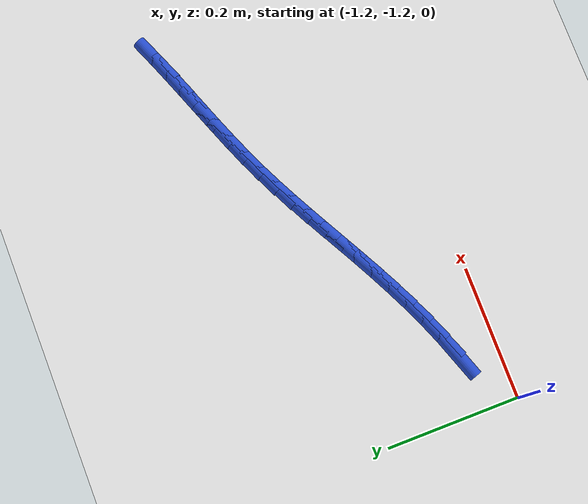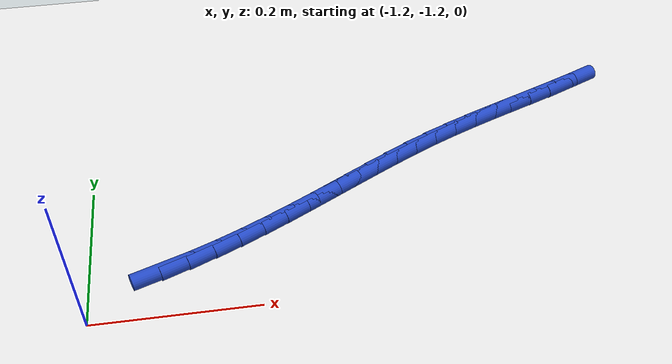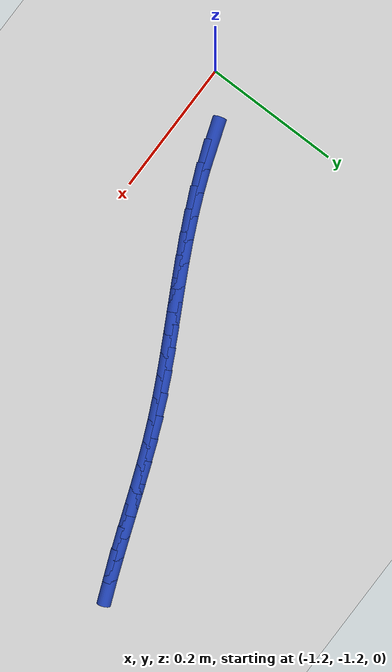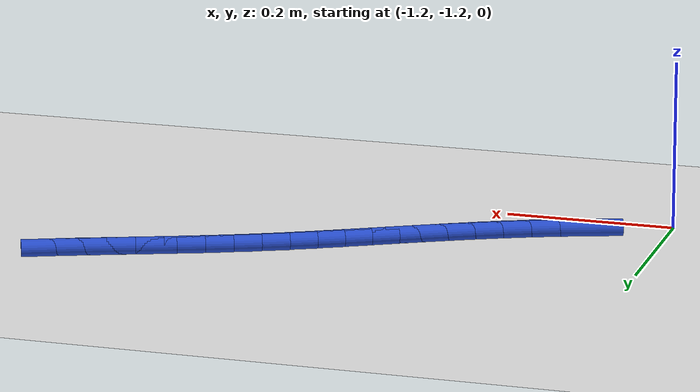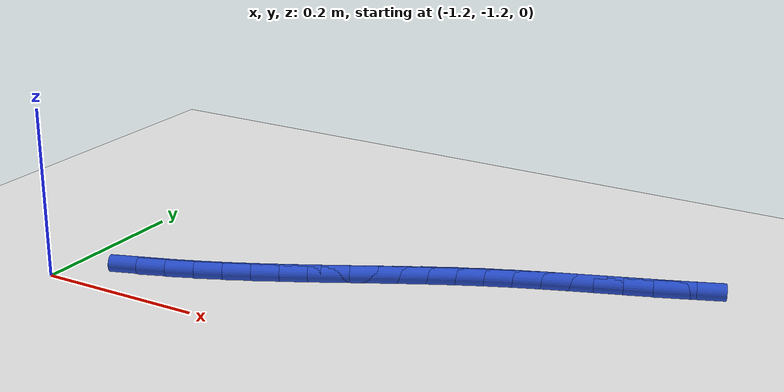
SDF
<sdf version="1.6">
 <world name="default">
  <model name="ground_plane">
   <static>1</static>
   <link name="link">
    <collision name="collision">
     <geometry><plane><normal>0 0 1</normal><size>100 100</size></plane></geometry>
     <surface><friction><ode><mu>100</mu><mu2>50</mu2></ode></friction></surface>
    </collision>
    <visual name="visual">
     <cast_shadows>0</cast_shadows>
     <geometry><plane><normal>0 0 1</normal><size>100 100</size></plane></geometry>
     <material>
      <script><uri>file://media/materials/scripts/gazebo.material</uri><name>Gazebo/WhiteGlow</name></script>
     </material>
    </visual>
   </link>
  </model>
  <model name="line">
   <link name="link_177">
    <pose>-1.1119202319148527 -1.140853069007312 0.01 0 1.57 0.33858143909539296</pose>
    <collision name="collision">
     <geometry><cylinder><radius>0.01</radius><length>0.08</length></cylinder></geometry>
    </collision>
    <visual name="visual">
     <material>
      <script><name>Gazebo/Blue</name><uri>file://media/materials/scripts/gazebo.material</uri></script>
     </material>
     <geometry><cylinder><radius>0.01</radius><length>0.08</length></cylinder></geometry>
    </visual>
   </link>
   <link name="link_178">
    <pose>-1.0799416664889425 -1.1295920854175232 0.01 0 1.57 0.3805953848010348</pose>
    <collision name="collision">
     <geometry><cylinder><radius>0.01</radius><length>0.08</length></cylinder></geometry>
    </collision>
    <visual name="visual">
     <material>
      <script><name>Gazebo/Blue</name><uri>file://media/materials/scripts/gazebo.material</uri></script>
     </material>
     <geometry><cylinder><radius>0.01</radius><length>0.08</length></cylinder></geometry>
    </visual>
   </link>
   <link name="link_179">
    <pose>-1.0484212439329827 -1.1169806618297073 0.01 0 1.57 0.41477350708900673</pose>
    <collision name="collision">
     <geometry><cylinder><radius>0.01</radius><length>0.08</length></cylinder></geometry>
    </collision>
    <visual name="visual">
     <material>
      <script><name>Gazebo/Blue</name><uri>file://media/materials/scripts/gazebo.material</uri></script>
     </material>
     <geometry><cylinder><radius>0.01</radius><length>0.08</length></cylinder></geometry>
    </visual>
   </link>
   <link name="link_180">
    <pose>-1.0176572657692966 -1.1034347195739733 0.01 0 1.57 0.4428126907526646</pose>
    <collision name="collision">
     <geometry><cylinder><radius>0.01</radius><length>0.08</length></cylinder></geometry>
    </collision>
    <visual name="visual">
     <material>
      <script><name>Gazebo/Blue</name><uri>file://media/materials/scripts/gazebo.material</uri></script>
     </material>
     <geometry><cylinder><radius>0.01</radius><length>0.08</length></cylinder></geometry>
    </visual>
   </link>
   <link name="link_181">
    <pose>-0.98770157425454 -1.0892290964409481 0.01 0 1.57 0.4652046938975816</pose>
    <collision name="collision">
     <geometry><cylinder><radius>0.01</radius><length>0.08</length></cylinder></geometry>
    </collision>
    <visual name="visual">
     <material>
      <script><name>Gazebo/Blue</name><uri>file://media/materials/scripts/gazebo.material</uri></script>
     </material>
     <geometry><cylinder><radius>0.01</radius><length>0.08</length></cylinder></geometry>
    </visual>
   </link>
   <link name="link_182">
    <pose>-0.9584075602524587 -1.074525028385879 0.01 0 1.57 0.4816095809293125</pose>
    <collision name="collision">
     <geometry><cylinder><radius>0.01</radius><length>0.08</length></cylinder></geometry>
    </collision>
    <visual name="visual">
     <material>
      <script><name>Gazebo/Blue</name><uri>file://media/materials/scripts/gazebo.material</uri></script>
     </material>
     <geometry><cylinder><radius>0.01</radius><length>0.08</length></cylinder></geometry>
    </visual>
   </link>
   <link name="link_183">
    <pose>-0.9296229791677953 -1.0594805253927713 0.01 0 1.57 0.4917536209971655</pose>
    <collision name="collision">
     <geometry><cylinder><radius>0.01</radius><length>0.08</length></cylinder></geometry>
    </collision>
    <visual name="visual">
     <material>
      <script><name>Gazebo/Blue</name><uri>file://media/materials/scripts/gazebo.material</uri></script>
     </material>
     <geometry><cylinder><radius>0.01</radius><length>0.08</length></cylinder></geometry>
    </visual>
   </link>
   <link name="link_184">
    <pose>-0.9011955864052937 -1.044253597445633 0.01 0 1.57 0.49544102538541085</pose>
    <collision name="collision">
     <geometry><cylinder><radius>0.01</radius><length>0.08</length></cylinder></geometry>
    </collision>
    <visual name="visual">
     <material>
      <script><name>Gazebo/Blue</name><uri>file://media/materials/scripts/gazebo.material</uri></script>
     </material>
     <geometry><cylinder><radius>0.01</radius><length>0.08</length></cylinder></geometry>
    </visual>
   </link>
   <link name="link_185">
    <pose>-0.872973137369698 -1.0290022545284714 0.01 0 1.57 0.4925483964596975</pose>
    <collision name="collision">
     <geometry><cylinder><radius>0.01</radius><length>0.08</length></cylinder></geometry>
    </collision>
    <visual name="visual">
     <material>
      <script><name>Gazebo/Blue</name><uri>file://media/materials/scripts/gazebo.material</uri></script>
     </material>
     <geometry><cylinder><radius>0.01</radius><length>0.08</length></cylinder></geometry>
    </visual>
   </link>
   <link name="link_186">
    <pose>-0.8448033874657505 -1.0138845066252926 0.01 0 1.57 0.48302436951848676</pose>
    <collision name="collision">
     <geometry><cylinder><radius>0.01</radius><length>0.08</length></cylinder></geometry>
    </collision>
    <visual name="visual">
     <material>
      <script><name>Gazebo/Blue</name><uri>file://media/materials/scripts/gazebo.material</uri></script>
     </material>
     <geometry><cylinder><radius>0.01</radius><length>0.08</length></cylinder></geometry>
    </visual>
   </link>
   <link name="link_187">
    <pose>-0.8165340920981947 -0.9990583637201039 0.01 0 1.57 0.4668956323924653</pose>
    <collision name="collision">
     <geometry><cylinder><radius>0.01</radius><length>0.08</length></cylinder></geometry>
    </collision>
    <visual name="visual">
     <material>
      <script><name>Gazebo/Blue</name><uri>file://media/materials/scripts/gazebo.material</uri></script>
     </material>
     <geometry><cylinder><radius>0.01</radius><length>0.08</length></cylinder></geometry>
    </visual>
   </link>
   <link name="link_188">
    <pose>-0.7880130066717735 -0.9846818357969118 0.01 0 1.57 0.4442793140638277</pose>
    <collision name="collision">
     <geometry><cylinder><radius>0.01</radius><length>0.08</length></cylinder></geometry>
    </collision>
    <visual name="visual">
     <material>
      <script><name>Gazebo/Blue</name><uri>file://media/materials/scripts/gazebo.material</uri></script>
     </material>
     <geometry><cylinder><radius>0.01</radius><length>0.08</length></cylinder></geometry>
    </visual>
   </link>
   <link name="link_189">
    <pose>-0.7590878865912315 -0.9709129328397244 0.01 0 1.57 0.4162373507346329</pose>
    <collision name="collision">
     <geometry><cylinder><radius>0.01</radius><length>0.08</length></cylinder></geometry>
    </collision>
    <visual name="visual">
     <material>
      <script><name>Gazebo/Blue</name><uri>file://media/materials/scripts/gazebo.material</uri></script>
     </material>
     <geometry><cylinder><radius>0.01</radius><length>0.08</length></cylinder></geometry>
    </visual>
   </link>
   <link name="link_190">
    <pose>-0.7296242039252208 -0.9578880089048485 0.01 0 1.57 0.39111000897576387</pose>
    <collision name="collision">
     <geometry><cylinder><radius>0.01</radius><length>0.08</length></cylinder></geometry>
    </collision>
    <visual name="visual">
     <material>
      <script><name>Gazebo/Blue</name><uri>file://media/materials/scripts/gazebo.material</uri></script>
     </material>
     <geometry><cylinder><radius>0.01</radius><length>0.08</length></cylinder></geometry>
    </visual>
   </link>
   <link name="link_191">
    <pose>-0.6996601841147576 -0.9455322533191262 0.01 0 1.57 0.3733541275987605</pose>
    <collision name="collision">
     <geometry><cylinder><radius>0.01</radius><length>0.08</length></cylinder></geometry>
    </collision>
    <visual name="visual">
     <material>
      <script><name>Gazebo/Blue</name><uri>file://media/materials/scripts/gazebo.material</uri></script>
     </material>
     <geometry><cylinder><radius>0.01</radius><length>0.08</length></cylinder></geometry>
    </visual>
   </link>
   <link name="link_192">
    <pose>-0.6693315306157904 -0.9336517033582925 0.01 0 1.57 0.3628376969246072</pose>
    <collision name="collision">
     <geometry><cylinder><radius>0.01</radius><length>0.08</length></cylinder></geometry>
    </collision>
    <visual name="visual">
     <material>
      <script><name>Gazebo/Blue</name><uri>file://media/materials/scripts/gazebo.material</uri></script>
     </material>
     <geometry><cylinder><radius>0.01</radius><length>0.08</length></cylinder></geometry>
    </visual>
   </link>
   <link name="link_193">
    <pose>-0.6387750450917032 -0.9220510539064852 0.01 0 1.57 0.35943518934658647</pose>
    <collision name="collision">
     <geometry><cylinder><radius>0.01</radius><length>0.08</length></cylinder></geometry>
    </collision>
    <visual name="visual">
     <material>
      <script><name>Gazebo/Blue</name><uri>file://media/materials/scripts/gazebo.material</uri></script>
     </material>
     <geometry><cylinder><radius>0.01</radius><length>0.08</length></cylinder></geometry>
    </visual>
   </link>
   <link name="link_194">
    <pose>-0.6081275292058786 -0.9105349998478414 0.01 0 1.57 0.3630927790705814</pose>
    <collision name="collision">
     <geometry><cylinder><radius>0.01</radius><length>0.08</length></cylinder></geometry>
    </collision>
    <visual name="visual">
     <material>
      <script><name>Gazebo/Blue</name><uri>file://media/materials/scripts/gazebo.material</uri></script>
     </material>
     <geometry><cylinder><radius>0.01</radius><length>0.08</length></cylinder></geometry>
    </visual>
   </link>
   <link name="link_195">
    <pose>-0.5775257846216992 -0.8989082360664991 0.01 0 1.57 0.37383200081818085</pose>
    <collision name="collision">
     <geometry><cylinder><radius>0.01</radius><length>0.08</length></cylinder></geometry>
    </collision>
    <visual name="visual">
     <material>
      <script><name>Gazebo/Blue</name><uri>file://media/materials/scripts/gazebo.material</uri></script>
     </material>
     <geometry><cylinder><radius>0.01</radius><length>0.08</length></cylinder></geometry>
    </visual>
   </link>
   <link name="link_196">
    <pose>-0.5471066130025474 -0.8869754574465954 0.01 0 1.57 0.3917446024889209</pose>
    <collision name="collision">
     <geometry><cylinder><radius>0.01</radius><length>0.08</length></cylinder></geometry>
    </collision>
    <visual name="visual">
     <material>
      <script><name>Gazebo/Blue</name><uri>file://media/materials/scripts/gazebo.material</uri></script>
     </material>
     <geometry><cylinder><radius>0.01</radius><length>0.08</length></cylinder></geometry>
    </visual>
   </link>
  </model>
 </world>
</sdf>
